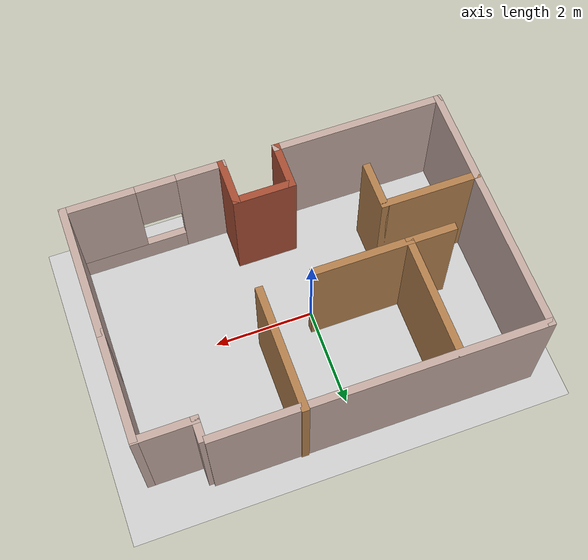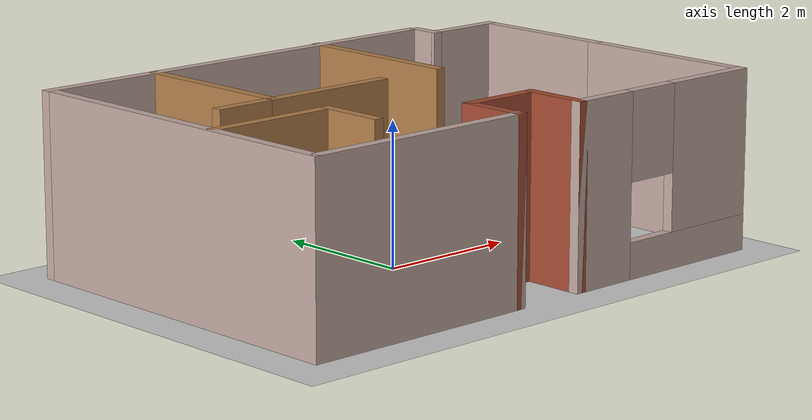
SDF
<sdf version="1.7">
 <world name="default">
  <light name="sun" type="directional">
   <pose>0 0 10 0 -0 0</pose>
   <diffuse>0.8 0.8 0.8 1</diffuse>
   <specular>0.2 0.2 0.2 1</specular>
   <attenuation>
    <range>1000</range>
    <constant>0.9</constant>
    <linear>0.01</linear>
    <quadratic>0.001</quadratic>
   </attenuation>
   <direction>-0.5 0.1 -0.9</direction>
   <spot><inner_angle>0</inner_angle><outer_angle>0</outer_angle><falloff>0</falloff></spot>
  </light>
  <model name="ground_plane">
   <static>1</static>
   <link name="link">
    <collision name="collision">
     <geometry><plane><normal>0 0 1</normal><size>100 100</size></plane></geometry>
     <surface>
      <contact><collide_bitmask>65535</collide_bitmask></contact>
      <friction><ode><mu>100</mu><mu2>50</mu2></ode></friction>
     </surface>
    </collision>
    <visual name="visual">
     <cast_shadows>0</cast_shadows>
     <geometry><plane><normal>0 0 1</normal><size>100 100</size></plane></geometry>
     <material>
      <script><uri>file://media/materials/scripts/gazebo.material</uri><name>Gazebo/Grey</name></script>
     </material>
    </visual>
   </link>
  </model>
  <gravity>0 0 -9.8</gravity>
  <magnetic_field>6e-06 2.3e-05 -4.2e-05</magnetic_field>
  <atmosphere type="adiabatic"/>
  <physics type="ode">
   <max_step_size>0.001</max_step_size>
   <real_time_factor>1</real_time_factor>
   <real_time_update_rate>1000</real_time_update_rate>
  </physics>
  <scene><ambient>0.4 0.4 0.4 1</ambient><background>0.7 0.7 0.7 1</background><shadows>1</shadows></scene>
  <spherical_coordinates>
   <surface_model>EARTH_WGS84</surface_model>
   <latitude_deg>0</latitude_deg>
   <longitude_deg>0</longitude_deg>
   <elevation>0</elevation>
   <heading_deg>0</heading_deg>
  </spherical_coordinates>
  <model name="world1">
   <pose>0.260265 0.126452 0 0 -0 0</pose>
   <link name="Wall_10">
    <collision name="Wall_10_Collision">
     <geometry><box><size>2.75 0.15 2.5</size></box></geometry>
     <pose>0 0 1.25 0 -0 0</pose>
    </collision>
    <visual name="Wall_10_Visual">
     <pose>0 0 1.25 0 -0 0</pose>
     <geometry><box><size>2.75 0.15 2.5</size></box></geometry>
     <material>
      <script><uri>file://media/materials/scripts/gazebo.material</uri><name>Gazebo/Grey</name></script>
      <ambient>0.760784 0.662745 0.627451 1</ambient>
     </material>
     <meta><layer>0</layer></meta>
    </visual>
    <pose>3.775 -1.26145 0 0 -0 1.5708</pose>
   </link>
   <link name="Wall_11">
    <collision name="Wall_11_Collision">
     <geometry><box><size>2.25 0.15 2.5</size></box></geometry>
     <pose>0 0 1.25 0 -0 0</pose>
    </collision>
    <visual name="Wall_11_Visual">
     <pose>0 0 1.25 0 -0 0</pose>
     <geometry><box><size>2.25 0.15 2.5</size></box></geometry>
     <material>
      <script><uri>file://media/materials/scripts/gazebo.material</uri><name>Gazebo/Grey</name></script>
      <ambient>0.760784 0.662745 0.627451 1</ambient>
     </material>
     <meta><layer>0</layer></meta>
    </visual>
    <pose>3.775 1.08855 0 0 -0 1.5708</pose>
   </link>
   <link name="Wall_12">
    <collision name="Wall_12_Collision">
     <geometry><box><size>1.25 0.15 2.5</size></box></geometry>
     <pose>0 0 1.25 0 -0 0</pose>
    </collision>
    <visual name="Wall_12_Visual">
     <pose>0 0 1.25 0 -0 0</pose>
     <geometry><box><size>1.25 0.15 2.5</size></box></geometry>
     <material>
      <script><uri>file://media/materials/scripts/gazebo.material</uri><name>Gazebo/Grey</name></script>
      <ambient>0.760784 0.662745 0.627451 1</ambient>
     </material>
     <meta><layer>0</layer></meta>
    </visual>
    <pose>3.225 2.13855 0 0 -0 3.14159</pose>
   </link>
   <link name="Wall_13">
    <collision name="Wall_13_Collision">
     <geometry><box><size>0.5 0.15 2.5</size></box></geometry>
     <pose>0 0 1.25 0 -0 0</pose>
    </collision>
    <visual name="Wall_13_Visual">
     <pose>0 0 1.25 0 -0 0</pose>
     <geometry><box><size>0.5 0.15 2.5</size></box></geometry>
     <material>
      <script><uri>file://media/materials/scripts/gazebo.material</uri><name>Gazebo/Grey</name></script>
      <ambient>0.760784 0.662745 0.627451 1</ambient>
     </material>
     <meta><layer>0</layer></meta>
    </visual>
    <pose>2.675 2.31354 0 0 -0 1.5708</pose>
   </link>
   <link name="Wall_16">
    <collision name="Wall_16_Collision">
     <geometry><box><size>6.5 0.15 2.5</size></box></geometry>
     <pose>0 0 1.25 0 -0 0</pose>
    </collision>
    <visual name="Wall_16_Visual">
     <pose>0 0 1.25 0 -0 0</pose>
     <geometry><box><size>6.5 0.15 2.5</size></box></geometry>
     <material>
      <script><uri>file://media/materials/scripts/gazebo.material</uri><name>Gazebo/Grey</name></script>
      <ambient>0.760784 0.662745 0.627451 1</ambient>
     </material>
     <meta><layer>0</layer></meta>
    </visual>
    <pose>-0.6 2.53855 0 0 -0 0</pose>
   </link>
   <link name="Wall_19">
    <collision name="Wall_19_Collision">
     <geometry><box><size>2.5 0.15 2.5</size></box></geometry>
     <pose>0 0 1.25 0 -0 0</pose>
    </collision>
    <visual name="Wall_19_Visual">
     <pose>0 0 1.25 0 -0 0</pose>
     <geometry><box><size>2.5 0.15 2.5</size></box></geometry>
     <material>
      <script><uri>file://media/materials/scripts/gazebo.material</uri><name>Gazebo/Wood</name></script>
      <ambient>1 1 1 1</ambient>
     </material>
     <meta><layer>0</layer></meta>
    </visual>
    <pose>-2.05318 1.35924 0 0 -0 -1.5708</pose>
   </link>
   <link name="Wall_20">
    <collision name="Wall_20_Collision">
     <geometry><box><size>1 0.15 2.5</size></box></geometry>
     <pose>0 0 1.25 0 -0 0</pose>
    </collision>
    <visual name="Wall_20_Visual">
     <pose>0 0 1.25 0 -0 0</pose>
     <geometry><box><size>1 0.15 2.5</size></box></geometry>
     <material>
      <script><uri>file://media/materials/scripts/gazebo.material</uri><name>Gazebo/Wood</name></script>
      <ambient>1 1 1 1</ambient>
     </material>
     <meta><layer>0</layer></meta>
    </visual>
    <pose>-2.47818 0.184236 0 0 -0 3.14159</pose>
   </link>
   <link name="Wall_23">
    <collision name="Wall_23_Collision">
     <geometry><box><size>2 0.15 2.5</size></box></geometry>
     <pose>0 0 1.25 0 -0 0</pose>
    </collision>
    <visual name="Wall_23_Visual">
     <pose>0 0 1.25 0 -0 0</pose>
     <geometry><box><size>2 0.15 2.5</size></box></geometry>
     <material>
      <script><uri>file://media/materials/scripts/gazebo.material</uri><name>Gazebo/Wood</name></script>
      <ambient>1 1 1 1</ambient>
     </material>
     <meta><layer>0</layer></meta>
    </visual>
    <pose>-2.82731 -0.70221 0 0 -0 0</pose>
   </link>
   <link name="Wall_24">
    <collision name="Wall_24_Collision">
     <geometry><box><size>1 0.15 2.5</size></box></geometry>
     <pose>0 0 1.25 0 -0 0</pose>
    </collision>
    <visual name="Wall_24_Visual">
     <pose>0 0 1.25 0 -0 0</pose>
     <geometry><box><size>1 0.15 2.5</size></box></geometry>
     <material>
      <script><uri>file://media/materials/scripts/gazebo.material</uri><name>Gazebo/Wood</name></script>
      <ambient>1 1 1 1</ambient>
     </material>
     <meta><layer>0</layer></meta>
    </visual>
    <pose>-1.90231 -1.12721 0 0 -0 -1.5708</pose>
   </link>
   <link name="Wall_27">
    <collision name="Wall_27_Collision">
     <geometry><box><size>2 0.15 2.5</size></box></geometry>
     <pose>0 0 1.25 0 -0 0</pose>
    </collision>
    <visual name="Wall_27_Visual">
     <pose>0 0 1.25 0 -0 0</pose>
     <geometry><box><size>2 0.15 2.5</size></box></geometry>
     <material>
      <script><uri>file://media/materials/scripts/gazebo.material</uri><name>Gazebo/Wood</name></script>
      <ambient>1 1 1 1</ambient>
     </material>
     <meta><layer>0</layer></meta>
    </visual>
    <pose>-1.12818 0.184236 0 0 -0 0</pose>
   </link>
   <link name="Wall_29">
    <collision name="Wall_29_Collision">
     <geometry><box><size>2.5 0.15 2.5</size></box></geometry>
     <pose>0 0 1.25 0 -0 0</pose>
    </collision>
    <visual name="Wall_29_Visual">
     <pose>0 0 1.25 0 -0 0</pose>
     <geometry><box><size>2.5 0.15 2.5</size></box></geometry>
     <material>
      <script><uri>file://media/materials/scripts/gazebo.material</uri><name>Gazebo/Wood</name></script>
      <ambient>1 1 1 1</ambient>
     </material>
     <meta><layer>0</layer></meta>
    </visual>
    <pose>0.857771 1.38645 0 0 -0 -1.5708</pose>
   </link>
   <link name="Wall_4">
    <collision name="Wall_4_Collision">
     <geometry><box><size>5.25 0.15 2.5</size></box></geometry>
     <pose>0 0 1.25 0 -0 0</pose>
    </collision>
    <visual name="Wall_4_Visual">
     <pose>0 0 1.25 0 -0 0</pose>
     <geometry><box><size>5.25 0.15 2.5</size></box></geometry>
     <material>
      <script><uri>file://media/materials/scripts/gazebo.material</uri><name>Gazebo/Grey</name></script>
      <ambient>0.760784 0.662745 0.627451 1</ambient>
     </material>
     <meta><layer>0</layer></meta>
    </visual>
    <pose>-3.775 -0.011455 0 0 -0 -1.5708</pose>
   </link>
   <link name="Wall_5">
    <collision name="Wall_5_Collision">
     <geometry><box><size>3.5 0.15 2.5</size></box></geometry>
     <pose>0 0 1.25 0 -0 0</pose>
    </collision>
    <visual name="Wall_5_Visual">
     <pose>0 0 1.25 0 -0 0</pose>
     <geometry><box><size>3.5 0.15 2.5</size></box></geometry>
     <material>
      <script><uri>file://media/materials/scripts/gazebo.material</uri><name>Gazebo/Grey</name></script>
      <ambient>0.760784 0.662745 0.627451 1</ambient>
     </material>
     <meta><layer>0</layer></meta>
    </visual>
    <pose>-2.1 -2.56146 0 0 -0 0</pose>
   </link>
   <link name="Wall_6">
    <collision name="Wall_6_Collision">
     <geometry><box><size>1 0.15 2.5</size></box></geometry>
     <pose>0 0 1.25 0 -0 0</pose>
    </collision>
    <visual name="Wall_6_Visual">
     <pose>0 0 1.25 0 -0 0</pose>
     <geometry><box><size>1 0.15 2.5</size></box></geometry>
     <material>
      <script><uri>file://media/materials/scripts/gazebo.material</uri><name>Gazebo/Bricks</name></script>
      <ambient>1 1 1 1</ambient>
     </material>
     <meta><layer>0</layer></meta>
    </visual>
    <pose>-0.425 -2.13646 0 0 -0 1.5708</pose>
   </link>
   <link name="Wall_7">
    <collision name="Wall_7_Collision">
     <geometry><box><size>1.25 0.15 2.5</size></box></geometry>
     <pose>0 0 1.25 0 -0 0</pose>
    </collision>
    <visual name="Wall_7_Visual">
     <pose>0 0 1.25 0 -0 0</pose>
     <geometry><box><size>1.25 0.15 2.5</size></box></geometry>
     <material>
      <script><uri>file://media/materials/scripts/gazebo.material</uri><name>Gazebo/Bricks</name></script>
      <ambient>0.760784 0.662745 0.627451 1</ambient>
     </material>
     <meta><layer>0</layer></meta>
    </visual>
    <pose>0.125 -1.71145 0 0 -0 0</pose>
   </link>
   <link name="Wall_8">
    <collision name="Wall_8_Collision">
     <geometry><box><size>1 0.15 2.5</size></box></geometry>
     <pose>0 0 1.25 0 -0 0</pose>
    </collision>
    <visual name="Wall_8_Visual">
     <pose>0 0 1.25 0 -0 0</pose>
     <geometry><box><size>1 0.15 2.5</size></box></geometry>
     <material>
      <script><uri>file://media/materials/scripts/gazebo.material</uri><name>Gazebo/Bricks</name></script>
      <ambient>0.760784 0.662745 0.627451 1</ambient>
     </material>
     <meta><layer>0</layer></meta>
    </visual>
    <pose>0.675 -2.13646 0 0 -0 -1.5708</pose>
   </link>
   <link name="Wall_9">
    <pose>2.225 -2.56146 0 0 -0 0</pose>
    <visual name="Wall_9_Visual_0">
     <pose>-1.12972 0 1.25 0 -0 0</pose>
     <geometry><box><size>0.99057 0.15 2.5</size></box></geometry>
     <material>
      <script><uri>file://media/materials/scripts/gazebo.material</uri><name>Gazebo/Grey</name></script>
      <ambient>0.760784 0.662745 0.627451 1</ambient>
     </material>
     <meta><layer>0</layer></meta>
    </visual>
    <collision name="Wall_9_Collision_0">
     <geometry><box><size>0.99057 0.15 2.5</size></box></geometry>
     <pose>-1.12972 0 1.25 0 -0 0</pose>
    </collision>
    <visual name="Wall_9_Visual_1">
     <pose>0.495285 0 0.25 0 -0 0</pose>
     <geometry><box><size>2.25943 0.15 0.5</size></box></geometry>
     <material>
      <script><uri>file://media/materials/scripts/gazebo.material</uri><name>Gazebo/Grey</name></script>
      <ambient>0.760784 0.662745 0.627451 1</ambient>
     </material>
     <meta><layer>0</layer></meta>
    </visual>
    <collision name="Wall_9_Collision_1">
     <geometry><box><size>2.25943 0.15 0.5</size></box></geometry>
     <pose>0.495285 0 0.25 0 -0 0</pose>
    </collision>
    <visual name="Wall_9_Visual_2">
     <pose>0.895285 0 1.5 0 -0 0</pose>
     <geometry><box><size>1.45943 0.15 2</size></box></geometry>
     <material>
      <script><uri>file://media/materials/scripts/gazebo.material</uri><name>Gazebo/Grey</name></script>
      <ambient>0.760784 0.662745 0.627451 1</ambient>
     </material>
     <meta><layer>0</layer></meta>
    </visual>
    <collision name="Wall_9_Collision_2">
     <geometry><box><size>1.45943 0.15 2</size></box></geometry>
     <pose>0.895285 0 1.5 0 -0 0</pose>
    </collision>
    <visual name="Wall_9_Visual_3">
     <pose>-0.23443 0 1.9 0 -0 0</pose>
     <geometry><box><size>0.8 0.15 1.2</size></box></geometry>
     <material>
      <script><uri>file://media/materials/scripts/gazebo.material</uri><name>Gazebo/Grey</name></script>
      <ambient>0.760784 0.662745 0.627451 1</ambient>
     </material>
     <meta><layer>0</layer></meta>
    </visual>
    <collision name="Wall_9_Collision_3">
     <geometry><box><size>0.8 0.15 1.2</size></box></geometry>
     <pose>-0.23443 0 1.9 0 -0 0</pose>
    </collision>
   </link>
   <static>1</static>
  </model>
 </world>
</sdf>
